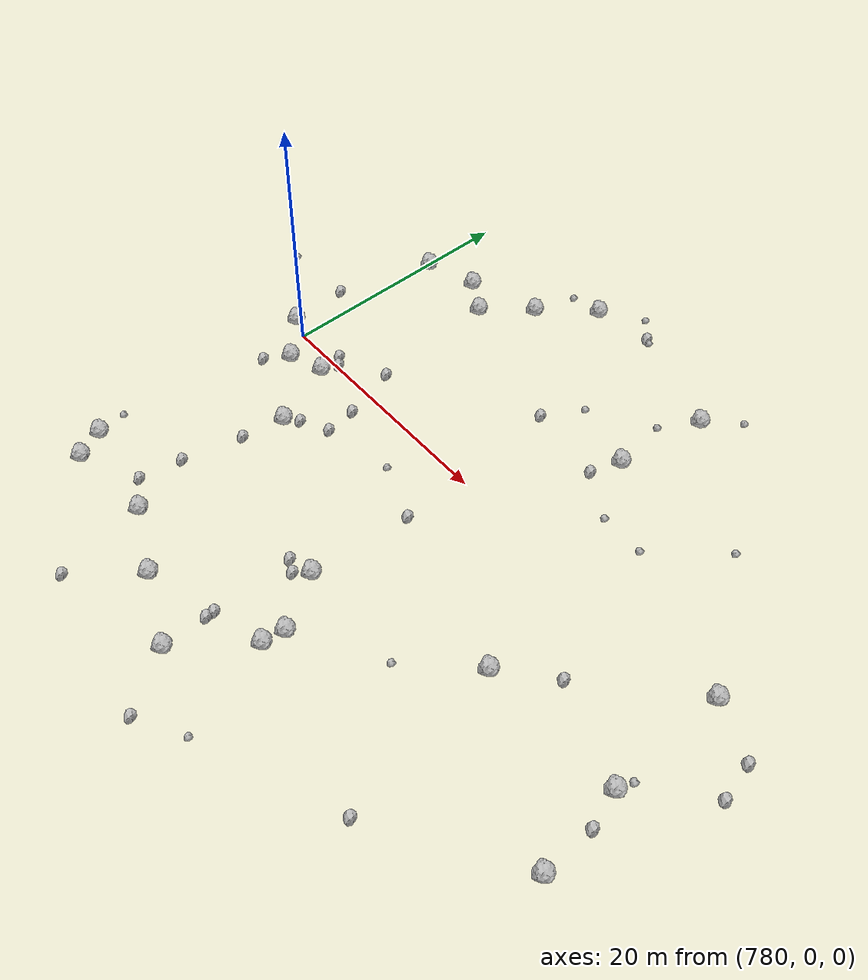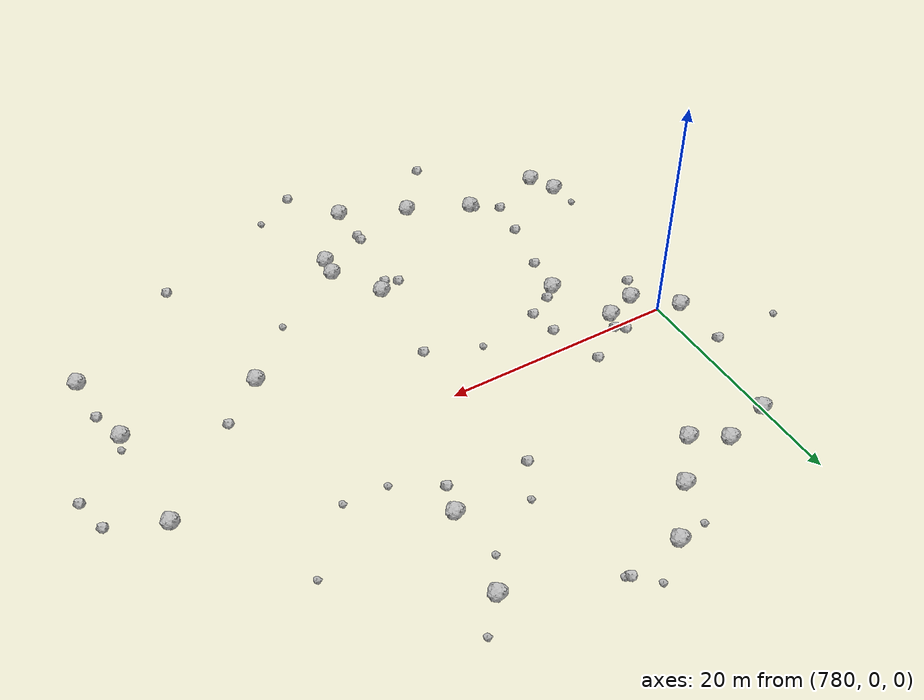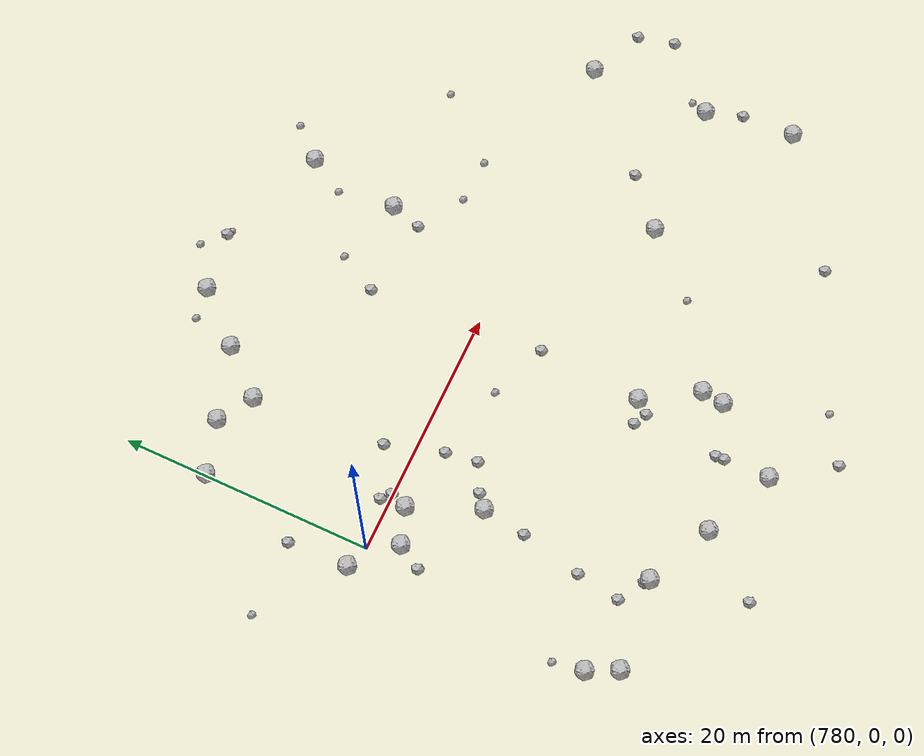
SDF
<sdf version="1.6">
 <world name="default">
  <include><uri>model://sun</uri></include>
  <model name="rock1_20_4">
   <include><uri>model://rock1</uri><pose>790.044676454732 16.45311968325899 0.5 0 0 0</pose></include>
  </model>
  <model name="rock1_20_5">
   <include><uri>model://rock1</uri><pose>812.8981338474136 -9.239088639166923 0.5 0 0 0</pose></include>
  </model>
  <model name="rock1_20_6">
   <include><uri>model://rock1</uri><pose>784.100067670501 -1.2305718268865675 0.5 0 0 0</pose></include>
  </model>
  <model name="rock1_20_7">
   <include><uri>model://rock1</uri><pose>801.6169569549912 -19.572985145669456 0.5 0 0 0</pose></include>
  </model>
  <model name="rock1_20_8">
   <include><uri>model://rock1</uri><pose>801.8530339645993 -17.79895674771342 0.5 0 0 0</pose></include>
  </model>
  <model name="rock1_20_9">
   <include><uri>model://rock1</uri><pose>797.5626167860383 -24.880931167882913 0.5 0 0 0</pose></include>
  </model>
  <model name="rock1_20_10">
   <include><uri>model://rock1</uri><pose>778.2422850902121 0.6685936002478208 0.5 0 0 0</pose></include>
  </model>
  <model name="rock1_20_11">
   <include><uri>model://rock1</uri><pose>807.1441579714626 17.768761111980133 0.5 0 0 0</pose></include>
  </model>
  <model name="rock1_20_12">
   <include><uri>model://rock1</uri><pose>786.3812704188401 -6.6340393999659 0.5 0 0 0</pose></include>
  </model>
  <model name="rock1_20_13">
   <include><uri>model://rock1</uri><pose>799.2146111792239 -13.597951818315124 0.5 0 0 0</pose></include>
  </model>
  <model name="rock1_20_14">
   <include><uri>model://rock1</uri><pose>786.6305184834863 -19.84399419939756 0.5 0 0 0</pose></include>
  </model>
  <model name="rock1_20_15">
   <include><uri>model://rock1</uri><pose>806.043476095882 10.262314666100416 0.5 0 0 0</pose></include>
  </model>
  <model name="rock1_20_16">
   <include><uri>model://rock1</uri><pose>825.3188801111357 -16.04623829213047 0.5 0 0 0</pose></include>
  </model>
  <model name="rock1_20_17">
   <include><uri>model://rock1</uri><pose>787.0046166447104 12.947499315914328 0.5 0 0 0</pose></include>
  </model>
  <model name="rock1_20_18">
   <include><uri>model://rock1</uri><pose>824.2728995743417 -8.92257695240638 0.5 0 0 0</pose></include>
  </model>
  <model name="rock1_20_19">
   <include><uri>model://rock1</uri><pose>791.8772142606009 -22.34928616042876 0.5 0 0 0</pose></include>
  </model>
  <model name="rock1_20_20">
   <include><uri>model://rock1</uri><pose>824.067422847511 0.7608441526807681 0.5 0 0 0</pose></include>
  </model>
  <model name="rock1_20_21">
   <include><uri>model://rock1</uri><pose>778.4548441462991 -18.199486661420817 0.5 0 0 0</pose></include>
  </model>
  <model name="rock1_20_22">
   <include><uri>model://rock1</uri><pose>780.13655601028 13.37138002108992 0.5 0 0 0</pose></include>
  </model>
  <model name="rock1_20_23">
   <include><uri>model://rock1</uri><pose>781.3282252227863 -2.2082781912888088 0.5 0 0 0</pose></include>
  </model>
  <model name="rock1_20_24">
   <include><uri>model://rock1</uri><pose>784.3253063385076 14.625551517348242 0.5 0 0 0</pose></include>
  </model>
  <model name="rock1_20_25">
   <include><uri>model://rock1</uri><pose>793.583474836741 20.36435443485361 0.5 0 0 0</pose></include>
  </model>
  <model name="rock1_20_26">
   <include><uri>model://rock1</uri><pose>779.5756669891887 -20.506399321533394 0.5 0 0 0</pose></include>
  </model>
  <model name="rock2_20_0">
   <include><uri>model://rock2</uri><pose>800.661516381441 -29.325923411649512 0.3 0 0 0</pose></include>
  </model>
  <model name="rock2_20_1">
   <include><uri>model://rock2</uri><pose>789.5424166036055 -4.652435624757555 0.3 0 0 0</pose></include>
  </model>
  <model name="rock2_20_2">
   <include><uri>model://rock2</uri><pose>788.1096431473533 -27.107090053710834 0.3 0 0 0</pose></include>
  </model>
  <model name="rock2_20_3">
   <include><uri>model://rock2</uri><pose>829.1117163678372 -4.210820538840817 0.3 0 0 0</pose></include>
  </model>
  <model name="rock2_20_4">
   <include><uri>model://rock2</uri><pose>825.1879480266815 -11.814202510534646 0.3 0 0 0</pose></include>
  </model>
  <model name="rock2_20_5">
   <include><uri>model://rock2</uri><pose>828.410965833005 -1.2475866480890438 0.3 0 0 0</pose></include>
  </model>
  <model name="rock2_20_6">
   <include><uri>model://rock2</uri><pose>797.2873635378493 -14.086692655544741 0.3 0 0 0</pose></include>
  </model>
  <model name="rock2_20_7">
   <include><uri>model://rock2</uri><pose>784.2678445967949 -18.331392492917093 0.3 0 0 0</pose></include>
  </model>
  <model name="rock2_20_8">
   <include><uri>model://rock2</uri><pose>797.5075407834436 -21.31831283668371 0.3 0 0 0</pose></include>
  </model>
  <model name="rock2_20_9">
   <include><uri>model://rock2</uri><pose>783.8841661049045 0.7400621021016143 0.3 0 0 0</pose></include>
  </model>
  <model name="rock2_20_10">
   <include><uri>model://rock2</uri><pose>805.2674878390554 7.784878889928372 0.3 0 0 0</pose></include>
  </model>
  <model name="rock2_20_11">
   <include><uri>model://rock2</uri><pose>784.802310469568 -14.907524008444167 0.3 0 0 0</pose></include>
  </model>
  <model name="rock2_20_12">
   <include><uri>model://rock2</uri><pose>789.1927366362291 -2.124601019243787 0.3 0 0 0</pose></include>
  </model>
  <model name="rock2_20_13">
   <include><uri>model://rock2</uri><pose>787.3840512490365 -5.787747063581104 0.3 0 0 0</pose></include>
  </model>
  <model name="rock2_20_14">
   <include><uri>model://rock2</uri><pose>798.3531329042436 21.124009499332374 0.3 0 0 0</pose></include>
  </model>
  <model name="rock2_20_15">
   <include><uri>model://rock2</uri><pose>785.8576455996056 -10.10356696822 0.3 0 0 0</pose></include>
  </model>
  <model name="rock2_20_16">
   <include><uri>model://rock2</uri><pose>797.4979744855224 -20.673383409772484 0.3 0 0 0</pose></include>
  </model>
  <model name="rock2_20_17">
   <include><uri>model://rock2</uri><pose>816.65444808777 -5.9841412701380285 0.3 0 0 0</pose></include>
  </model>
  <model name="rock2_20_18">
   <include><uri>model://rock2</uri><pose>780.1826715388728 -4.102617640105116 0.3 0 0 0</pose></include>
  </model>
  <model name="rock2_20_19">
   <include><uri>model://rock2</uri><pose>815.1635364090074 -22.680538158650936 0.3 0 0 0</pose></include>
  </model>
  <model name="rock2_20_20">
   <include><uri>model://rock2</uri><pose>787.845074703213 2.3648224116964727 0.3 0 0 0</pose></include>
  </model>
  <model name="rock2_20_21">
   <include><uri>model://rock2</uri><pose>798.830645532966 8.775812563922884 0.3 0 0 0</pose></include>
  </model>
  <model name="rock2_20_22">
   <include><uri>model://rock2</uri><pose>799.7596244004025 -5.320286596054164 0.3 0 0 0</pose></include>
  </model>
  <model name="rock2_20_23">
   <include><uri>model://rock2</uri><pose>784.5946533983581 0.11413036486797523 0.3 0 0 0</pose></include>
  </model>
  <model name="rock2_20_24">
   <include><uri>model://rock2</uri><pose>786.246219838076 -19.58133391539112 0.3 0 0 0</pose></include>
  </model>
  <model name="rock2_20_25">
   <include><uri>model://rock2</uri><pose>798.3350919416189 -14.633797460421851 0.3 0 0 0</pose></include>
  </model>
  <model name="rock2_20_26">
   <include><uri>model://rock2</uri><pose>777.9861382696048 5.442118758939408 0.3 0 0 0</pose></include>
  </model>
  <model name="rock3_20_0">
   <include><uri>model://rock3</uri><pose>809.4076923510512 20.2501295223461 0.2 0 0 0</pose></include>
  </model>
  <model name="rock3_20_1">
   <include><uri>model://rock3</uri><pose>817.1125858215424 10.452208872342453 0.2 0 0 0</pose></include>
  </model>
  <model name="rock3_20_2">
   <include><uri>model://rock3</uri><pose>808.3372461573587 -13.89322726455132 0.2 0 0 0</pose></include>
  </model>
  <model name="rock3_20_3">
   <include><uri>model://rock3</uri><pose>805.3904913663886 14.822643129288302 0.2 0 0 0</pose></include>
  </model>
  <model name="rock3_20_4">
   <include><uri>model://rock3</uri><pose>798.7120391765382 20.916287740678406 0.2 0 0 0</pose></include>
  </model>
  <model name="rock3_20_5">
   <include><uri>model://rock3</uri><pose>812.5874627920368 5.388684823990651 0.2 0 0 0</pose></include>
  </model>
  <model name="rock3_20_6">
   <include><uri>model://rock3</uri><pose>778.0254993797237 -15.836879294452824 0.2 0 0 0</pose></include>
  </model>
  <model name="rock3_20_7">
   <include><uri>model://rock3</uri><pose>824.6476108198665 -7.666279788966904 0.2 0 0 0</pose></include>
  </model>
  <model name="rock3_20_8">
   <include><uri>model://rock3</uri><pose>790.998398817113 19.987829714608253 0.2 0 0 0</pose></include>
  </model>
  <model name="rock3_20_9">
   <include><uri>model://rock3</uri><pose>772.0066036286636 5.364674037572826 0.2 0 0 0</pose></include>
  </model>
  <model name="rock3_20_10">
   <include><uri>model://rock3</uri><pose>804.2269313060348 -27.258812635472157 0.2 0 0 0</pose></include>
  </model>
  <model name="rock3_20_11">
   <include><uri>model://rock3</uri><pose>796.7055555597718 22.64235790575748 0.2 0 0 0</pose></include>
  </model>
  <model name="rock3_20_12">
   <include><uri>model://rock3</uri><pose>795.1535854463134 -3.535306108983299 0.2 0 0 0</pose></include>
  </model>
  <model name="rock3_20_13">
   <include><uri>model://rock3</uri><pose>800.5204675284367 11.9070035158867 0.2 0 0 0</pose></include>
  </model>
  <model name="rock3_20_14">
   <include><uri>model://rock3</uri><pose>808.9316749298234 5.541971615293114 0.2 0 0 0</pose></include>
  </model>
 </world>
</sdf>
